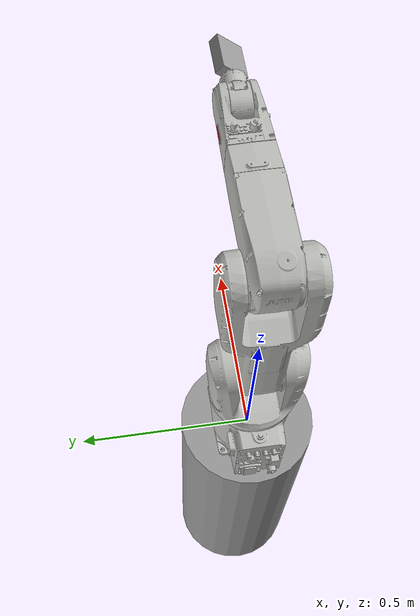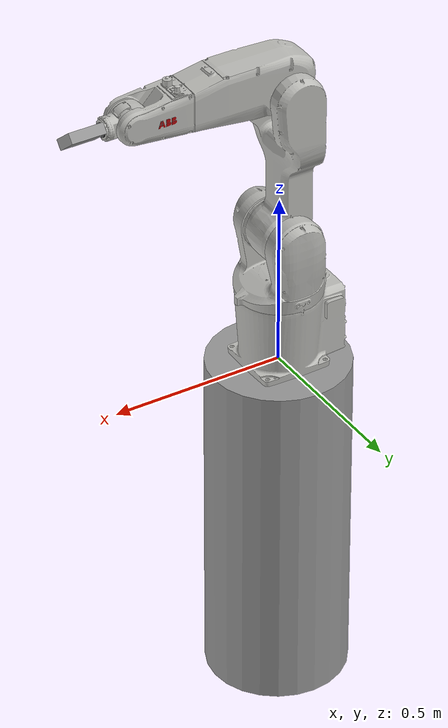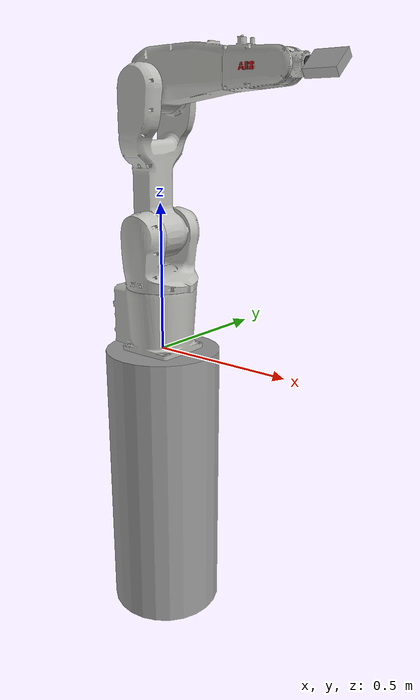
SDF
<?xml version='1.0'?>
<sdf version='1.7'>
  <model name='abb'>
    <link name='base_link'>
      <pose>0 0 0 0 -0 0</pose>
      <inertial>
        <pose>-0.028986 0.000596 0.11273 0 -0 0</pose>
        <mass>13.7742</mass>
        <inertia>
          <ixx>0.101998</ixx>
          <ixy>0.000495482</ixy>
          <ixz>0.000311158</ixz>
          <iyy>0.13969</iyy>
          <iyz>-0.000245375</iyz>
          <izz>0.130433</izz>
        </inertia>
      </inertial>
      <gravity>0</gravity>
      <velocity_decay/>
      <self_collide>0</self_collide>
      <enable_wind>0</enable_wind>
      <kinematic>0</kinematic>
      <visual name='base_link_fixed_joint_lump__visual_visual'>
        <pose>0 0 0 0 -0 0</pose>
        <geometry>
          <mesh>
            <scale>1 1 1</scale>
            <uri>model://abb/meshes/visual/base_link.dae</uri>
          </mesh>
        </geometry>
        <transparency>0</transparency>
        <cast_shadows>1</cast_shadows>
        <material>
          <emissive>0 0 0 1</emissive>
          <shader type='pixel'/>
        </material>
      </visual>
    </link>
    <link name='link_0'>
      <inertial>
        <mass>1</mass>
        <inertia>
          <ixx>0.145833</ixx>
          <ixy>0</ixy>
          <ixz>0</ixz>
          <iyy>0.145833</iyy>
          <iyz>0</iyz>
          <izz>0.125</izz>
        </inertia>
        <pose>0 0 0 0 -0 0</pose>
      </inertial>
      <pose>0 -0 -0.5 0 -0 0</pose>
      <gravity>1</gravity>
      <self_collide>0</self_collide>
      <kinematic>0</kinematic>
      <enable_wind>0</enable_wind>
      <visual name='visual'>
        <pose>0 0 0 0 -0 0</pose>
        <geometry>
          <cylinder>
            <radius>0.2</radius>
            <length>1</length>
          </cylinder>
        </geometry>
        <material>
          <lighting>1</lighting>
          <script>
            <uri>file://media/materials/scripts/gazebo.material</uri>
            <name>Gazebo/Grey</name>
          </script>
          <shader type='vertex'>
            <normal_map>__default__</normal_map>
          </shader>
          <ambient>0.3 0.3 0.3 1</ambient>
          <diffuse>0.7 0.7 0.7 1</diffuse>
          <specular>0.01 0.01 0.01 1</specular>
          <emissive>0 0 0 1</emissive>
        </material>
        <transparency>0</transparency>
        <cast_shadows>1</cast_shadows>
      </visual>
    </link>
    <link name='link_0_0'>
      <inertial>
        <mass>1</mass>
        <inertia>
          <ixx>0.166667</ixx>
          <ixy>0</ixy>
          <ixz>0</ixz>
          <iyy>0.166667</iyy>
          <iyz>0</iyz>
          <izz>0.166667</izz>
        </inertia>
        <pose>0 0 0 0 -0 0</pose>
      </inertial>
      <pose>0.584943 0.000298 0.888402 1.56602 -0.871271 -1.56714</pose>
      <gravity>1</gravity>
      <self_collide>0</self_collide>
      <kinematic>0</kinematic>
      <enable_wind>0</enable_wind>
      <visual name='visual'>
        <pose>0 0 0 0 -0 0</pose>
        <geometry>
          <box>
            <size>0.03 0.08 0.1</size>
          </box>
        </geometry>
        <material>
          <lighting>1</lighting>
          <script>
            <uri>file://media/materials/scripts/gazebo.material</uri>
            <name>Gazebo/Grey</name>
          </script>
          <shader type='pixel'>
            <normal_map>__default__</normal_map>
          </shader>
          <ambient>0.3 0.3 0.3 1</ambient>
          <diffuse>0.7 0.7 0.7 1</diffuse>
          <specular>0.01 0.01 0.01 1</specular>
          <emissive>0 0 0 1</emissive>
        </material>
        <transparency>0</transparency>
        <cast_shadows>1</cast_shadows>
      </visual>
      <collision name='collision'>
        <laser_retro>0</laser_retro>
        <max_contacts>10</max_contacts>
        <pose>0 0 0 0 -0 0</pose>
        <geometry>
          <box>
            <size>0.03 0.08 0.1</size>
          </box>
        </geometry>
        <surface>
          <friction>
            <ode>
              <mu>1</mu>
              <mu2>1</mu2>
              <fdir1>0 0 0</fdir1>
              <slip1>0</slip1>
              <slip2>0</slip2>
            </ode>
            <torsional>
              <coefficient>1</coefficient>
              <patch_radius>0</patch_radius>
              <surface_radius>0</surface_radius>
              <use_patch_radius>1</use_patch_radius>
              <ode>
                <slip>0</slip>
              </ode>
            </torsional>
          </friction>
          <bounce>
            <restitution_coefficient>0</restitution_coefficient>
            <threshold>1e+06</threshold>
          </bounce>
          <contact>
            <collide_without_contact>0</collide_without_contact>
            <collide_without_contact_bitmask>1</collide_without_contact_bitmask>
            <collide_bitmask>1</collide_bitmask>
            <ode>
              <soft_cfm>0</soft_cfm>
              <soft_erp>0.2</soft_erp>
              <kp>1e+13</kp>
              <kd>1</kd>
              <max_vel>0.01</max_vel>
              <min_depth>0</min_depth>
            </ode>
            <bullet>
              <split_impulse>1</split_impulse>
              <split_impulse_penetration_threshold>-0.01</split_impulse_penetration_threshold>
              <soft_cfm>0</soft_cfm>
              <soft_erp>0.2</soft_erp>
              <kp>1e+13</kp>
              <kd>1</kd>
            </bullet>
          </contact>
        </surface>
      </collision>
    </link>
    <link name='link_1'>
      <pose>-0 0 0.3991 0 -0 0</pose>
      <inertial>
        <pose>0.000877 -0.000631 -0.062883 0 -0 0</pose>
        <mass>11.8419</mass>
        <inertia>
          <ixx>0.11194</ixx>
          <ixy>-4.54988e-05</ixy>
          <ixz>0.000280961</ixz>
          <iyy>0.0915159</iyy>
          <iyz>-0.000109905</iyz>
          <izz>0.0876456</izz>
        </inertia>
      </inertial>
      <gravity>0</gravity>
      <velocity_decay/>
      <self_collide>0</self_collide>
      <enable_wind>0</enable_wind>
      <kinematic>0</kinematic>
      <visual name='link_1_fixed_joint_lump__visual_visual'>
        <pose>0 0 0 0 -0 0</pose>
        <geometry>
          <mesh>
            <scale>1 1 1</scale>
            <uri>model://abb/meshes/visual/link_1.dae</uri>
          </mesh>
        </geometry>
        <transparency>0</transparency>
        <cast_shadows>1</cast_shadows>
        <material>
          <shader type='pixel'/>
        </material>
      </visual>
    </link>
    <link name='link_2'>
      <pose>-0 0 0.3991 0 -0 0</pose>
      <inertial>
        <pose>-0.000928 -0.000497 0.250051 0 -0 0</pose>
        <mass>17.5394</mass>
        <inertia>
          <ixx>0.493558</ixx>
          <ixy>1.32136e-05</ixy>
          <ixz>0.000209024</ixz>
          <iyy>0.462939</iyy>
          <iyz>-0.00179901</iyz>
          <izz>0.0894214</izz>
        </inertia>
      </inertial>
      <gravity>0</gravity>
      <velocity_decay/>
      <self_collide>0</self_collide>
      <enable_wind>0</enable_wind>
      <kinematic>0</kinematic>
      <visual name='link_2_fixed_joint_lump__visual_visual'>
        <pose>0 0 0 0 -0 0</pose>
        <geometry>
          <mesh>
            <scale>1 1 1</scale>
            <uri>model://abb/meshes/visual/link_2.dae</uri>
          </mesh>
        </geometry>
        <transparency>0</transparency>
        <cast_shadows>1</cast_shadows>
        <material>
          <shader type='pixel'/>
        </material>
      </visual>
    </link>
    <link name='link_3'>
      <pose>0 0 0.8471 0 -0 0</pose>
      <inertial>
        <pose>0.099588 0.001143 0.032333 0 -0 0</pose>
        <mass>7.46365</mass>
        <inertia>
          <ixx>0.0252424</ixx>
          <ixy>0.000142737</ixy>
          <ixz>-0.00565542</ixz>
          <iyy>0.0906438</iyy>
          <iyz>0.000142213</iyz>
          <izz>0.0825079</izz>
        </inertia>
      </inertial>
      <gravity>0</gravity>
      <velocity_decay/>
      <self_collide>0</self_collide>
      <enable_wind>0</enable_wind>
      <kinematic>0</kinematic>
      <visual name='link_3_fixed_joint_lump__visual_visual'>
        <pose>0 0 0 0 -0 0</pose>
        <geometry>
          <mesh>
            <scale>1 1 1</scale>
            <uri>model://abb/meshes/visual/link_3.dae</uri>
          </mesh>
        </geometry>
        <transparency>0</transparency>
        <cast_shadows>1</cast_shadows>
        <material>
          <shader type='pixel'/>
        </material>
      </visual>
    </link>
    <link name='link_4'>
      <pose>0 0 0.8891 0 -0 0</pose>
      <inertial>
        <pose>0.381678 0.001261 0.005168 0 -0 0</pose>
        <mass>2.74436</mass>
        <inertia>
          <ixx>0.00573099</ixx>
          <ixy>-0.000131119</ixy>
          <ixz>0.000380232</ixz>
          <iyy>0.0118352</iyy>
          <iyz>-2.26565e-05</iyz>
          <izz>0.0114428</izz>
        </inertia>
      </inertial>
      <gravity>0</gravity>
      <velocity_decay/>
      <self_collide>0</self_collide>
      <enable_wind>0</enable_wind>
      <kinematic>0</kinematic>
      <visual name='link_4_fixed_joint_lump__visual_visual'>
        <pose>0 0 0 0 -0 0</pose>
        <geometry>
          <mesh>
            <scale>1 1 1</scale>
            <uri>model://abb/meshes/visual/link_4.dae</uri>
          </mesh>
        </geometry>
        <transparency>0</transparency>
        <cast_shadows>1</cast_shadows>
        <material>
          <shader type='pixel'/>
        </material>
      </visual>
    </link>
    <link name='link_5'>
      <pose>0.451 0 0.8891 0 -0 0</pose>
      <inertial>
        <pose>0.011197 -0.001056 0.000109 0 -0 0</pose>
        <mass>0.62953</mass>
        <inertia>
          <ixx>0.000502815</ixx>
          <ixy>-1.03173e-05</ixy>
          <ixz>-8.74347e-08</ixz>
          <iyy>0.00108856</iyy>
          <iyz>2.07657e-07</iyz>
          <izz>0.000918873</izz>
        </inertia>
      </inertial>
      <gravity>0</gravity>
      <velocity_decay/>
      <self_collide>0</self_collide>
      <enable_wind>0</enable_wind>
      <kinematic>0</kinematic>
      <visual name='link_5_fixed_joint_lump__visual_visual'>
        <pose>0 0 0 0 -0 0</pose>
        <geometry>
          <mesh>
            <scale>1 1 1</scale>
            <uri>model://abb/meshes/visual/link_5.dae</uri>
          </mesh>
        </geometry>
        <transparency>0</transparency>
        <cast_shadows>1</cast_shadows>
        <material>
          <shader type='pixel'/>
        </material>
      </visual>
    </link>
    <link name='link_6'>
      <pose>0.533 0 0.8891 0 -0 0</pose>
      <inertial>
        <pose>-0.00706 -0.00017 -1e-06 0 -0 0</pose>
        <mass>0.137</mass>
        <inertia>
          <ixx>0.001</ixx>
          <ixy>0</ixy>
          <ixz>0</ixz>
          <iyy>0.001</iyy>
          <iyz>0</iyz>
          <izz>0.001</izz>
        </inertia>
      </inertial>
      <gravity>0</gravity>
      <velocity_decay/>
      <self_collide>0</self_collide>
      <enable_wind>0</enable_wind>
      <kinematic>0</kinematic>
      <visual name='link_6_fixed_joint_lump__visual_visual'>
        <pose>0 0 0 0 -0 0</pose>
        <geometry>
          <mesh>
            <scale>1 1 1</scale>
            <uri>model://abb/meshes/visual/link_6.dae</uri>
          </mesh>
        </geometry>
        <transparency>0</transparency>
        <cast_shadows>1</cast_shadows>
        <material>
          <emissive>0 0 0 1</emissive>
          <shader type='pixel'/>
        </material>
      </visual>
    </link>
    <joint name='joint_1' type='revolute'>
      <parent>base_link</parent>
      <child>link_1</child>
      <pose>0 0 0 0 -0 0</pose>
      <axis>
        <xyz>0 0 1</xyz>
        <limit>
          <lower>-2.967</lower>
          <upper>2.967</upper>
          <effort>1000</effort>
          <velocity>5.027</velocity>
        </limit>
        <dynamics>
          <spring_reference>0</spring_reference>
          <spring_stiffness>0</spring_stiffness>
          <damping>50</damping>
          <friction>1</friction>
        </dynamics>
      </axis>
      <physics>
        <ode>
          <limit>
            <cfm>0</cfm>
            <erp>0.2</erp>
          </limit>
          <suspension>
            <cfm>0</cfm>
            <erp>0.2</erp>
          </suspension>
        </ode>
      </physics>
    </joint>
    <joint name='joint_2' type='revolute'>
      <parent>link_1</parent>
      <child>link_2</child>
      <pose>0 0 0 0 -0 0</pose>
      <axis>
        <xyz>0 1 0</xyz>
        <limit>
          <lower>-1.745</lower>
          <upper>2.269</upper>
          <effort>1000</effort>
          <velocity>4.189</velocity>
        </limit>
        <dynamics>
          <spring_reference>0</spring_reference>
          <spring_stiffness>0</spring_stiffness>
          <damping>50</damping>
          <friction>1</friction>
        </dynamics>
      </axis>
      <physics>
        <ode>
          <limit>
            <cfm>0</cfm>
            <erp>0.2</erp>
          </limit>
          <suspension>
            <cfm>0</cfm>
            <erp>0.2</erp>
          </suspension>
        </ode>
      </physics>
    </joint>
    <joint name='joint_3' type='revolute'>
      <parent>link_2</parent>
      <child>link_3</child>
      <pose>0 0 0 0 -0 0</pose>
      <axis>
        <xyz>0 1 0</xyz>
        <limit>
          <lower>-3.491</lower>
          <upper>1.222</upper>
          <effort>1000</effort>
          <velocity>5.236</velocity>
        </limit>
        <dynamics>
          <spring_reference>0</spring_reference>
          <spring_stiffness>0</spring_stiffness>
          <damping>10</damping>
          <friction>1</friction>
        </dynamics>
      </axis>
      <physics>
        <ode>
          <limit>
            <cfm>0</cfm>
            <erp>0.2</erp>
          </limit>
          <suspension>
            <cfm>0</cfm>
            <erp>0.2</erp>
          </suspension>
        </ode>
      </physics>
    </joint>
    <joint name='joint_4' type='revolute'>
      <parent>link_3</parent>
      <child>link_4</child>
      <pose>0 0 0 0 -0 0</pose>
      <axis>
        <xyz>1 0 0</xyz>
        <limit>
          <lower>-4.712</lower>
          <upper>4.712</upper>
          <effort>1000</effort>
          <velocity>6.981</velocity>
        </limit>
        <dynamics>
          <spring_reference>0</spring_reference>
          <spring_stiffness>0</spring_stiffness>
          <damping>5</damping>
          <friction>1</friction>
        </dynamics>
      </axis>
      <physics>
        <ode>
          <limit>
            <cfm>0</cfm>
            <erp>0.2</erp>
          </limit>
          <suspension>
            <cfm>0</cfm>
            <erp>0.2</erp>
          </suspension>
        </ode>
      </physics>
    </joint>
    <joint name='joint_5' type='revolute'>
      <parent>link_4</parent>
      <child>link_5</child>
      <pose>0 0 0 0 -0 0</pose>
      <axis>
        <xyz>0 1 0</xyz>
        <limit>
          <lower>-2.269</lower>
          <upper>2.269</upper>
          <effort>1000</effort>
          <velocity>7.069</velocity>
        </limit>
        <dynamics>
          <spring_reference>0</spring_reference>
          <spring_stiffness>0</spring_stiffness>
          <damping>2</damping>
          <friction>1</friction>
        </dynamics>
      </axis>
      <physics>
        <ode>
          <limit>
            <cfm>0</cfm>
            <erp>0.2</erp>
          </limit>
          <suspension>
            <cfm>0</cfm>
            <erp>0.2</erp>
          </suspension>
        </ode>
      </physics>
    </joint>
    <joint name='joint_6' type='revolute'>
      <parent>link_5</parent>
      <child>link_6</child>
      <pose>0 0 0 0 -0 0</pose>
      <axis>
        <xyz>1 0 0</xyz>
        <limit>
          <lower>-6.283</lower>
          <upper>6.283</upper>
          <effort>1000</effort>
          <velocity>10.472</velocity>
        </limit>
        <dynamics>
          <spring_reference>0</spring_reference>
          <spring_stiffness>0</spring_stiffness>
          <damping>1</damping>
          <friction>1</friction>
        </dynamics>
      </axis>
      <physics>
        <ode>
          <limit>
            <cfm>0</cfm>
            <erp>0.2</erp>
          </limit>
          <suspension>
            <cfm>0</cfm>
            <erp>0.2</erp>
          </suspension>
        </ode>
      </physics>
    </joint>
    <joint name='link_0_JOINT_0' type='fixed'>
      <parent>link_0</parent>
      <child>base_link</child>
      <pose>0 0 0 0 -0 0</pose>
      <physics>
        <ode>
          <limit>
            <cfm>0</cfm>
            <erp>0.2</erp>
          </limit>
          <suspension>
            <cfm>0</cfm>
            <erp>0.2</erp>
          </suspension>
        </ode>
      </physics>
    </joint>
    <joint name='link_6_JOINT_0' type='fixed'>
      <parent>link_6</parent>
      <child>link_0_0</child>
      <pose>0 0 0 0 -0 0</pose>
      <physics>
        <ode>
          <limit>
            <cfm>0</cfm>
            <erp>0.2</erp>
          </limit>
          <suspension>
            <cfm>0</cfm>
            <erp>0.2</erp>
          </suspension>
        </ode>
      </physics>
    </joint>
    <static>0</static>
    <allow_auto_disable>1</allow_auto_disable>
  </model>
</sdf>
